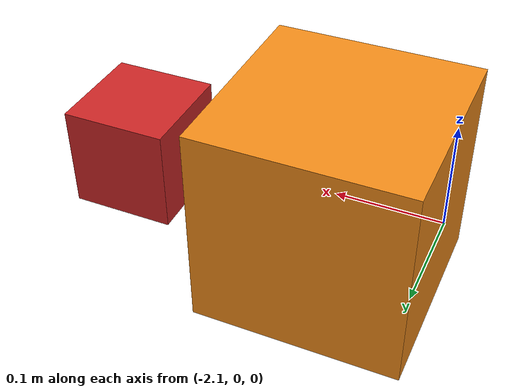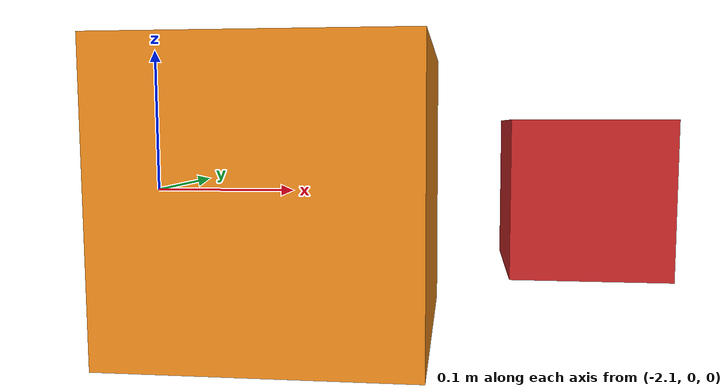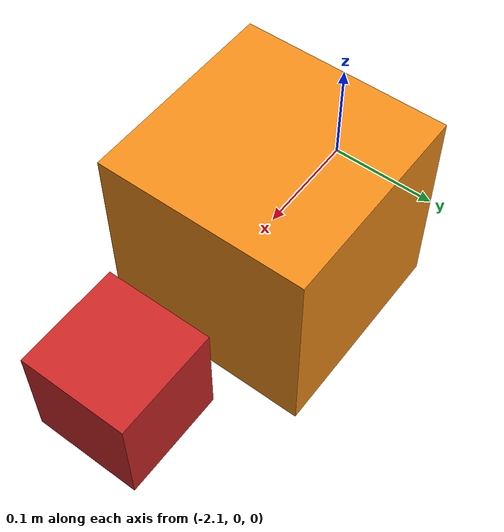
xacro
<?xml version='1.0' encoding='utf-8'?>
<robot xmlns:xacro="http://www.ros.org/wiki/xacro" name="free_flying_camera">

<!-- robot constants -->
<xacro:property name="mass" value="0" /> <!-- arbitrary value for mass -->
<xacro:property name="camera_link" value="0.1" /> <!-- Size of square 'camera' box -->
<xacro:property name="mass" value="0" /> <!-- arbitrary value for mass -->
<xacro:property name="width" value="0.2" /> <!-- Square dimensions (widthxwidth) of beams -->
<xacro:property name="height1" value="0.2" /> <!-- Link 1 -->
<xacro:property name="PI" value="3.1415926535897931"/>
<xacro:property name="x" value="-2"/>
<xacro:property name="y" value="0"/>
<xacro:property name="z" value="0"/>
<xacro:property name="r" value="0"/>
<xacro:property name="p" value="0"/>
<xacro:property name="y" value="0"/>

<!-- Import all Gazebo-customization elements, including Gazebo colors -->
<xacro:include filename="$(find visual_servoing)/robot_description/free_flying_kinect.gazebo" />

<!--link name="world"/-->
<!--link name="base_footprint"/-->

  <!-- Base Link -->
  <link name="link1">
    <collision>
      <origin xyz="${x} ${y} ${z}" rpy="${r} ${p} ${y}"/>
      <geometry>
	<box size="${width} ${width} ${height1}"/>
      </geometry>
    </collision>

    <visual>
      <origin xyz="${x} ${y} ${z}" rpy="${r} ${p} ${y}"/>
      <geometry>
	<box size="${width} ${width} ${height1}"/>
      </geometry>
      <material name="orange"/>
    </visual>

    <inertial>
      <origin xyz="${x} ${y} ${z}" rpy="${r} ${p} ${y}"/>
      <mass value="${mass}"/>
      <inertia
	  ixx="${mass / 12.0 * (width*width + height1*height1)}" ixy="0.0" ixz="0.0"
	  iyy="${mass / 12.0 * (height1*height1 + width*width)}" iyz="0.0"
	  izz="${mass / 12.0 * (width*width + width*width)}"/>
    </inertial>
  </link>

 <joint name="camera_joint" type="fixed">
    <axis xyz="0 1 0" />
    <origin xyz="${x+width} ${y} ${z}" rpy="${r} ${p} ${y}"/>
    <parent link="link1"/>
    <child link="camera_link"/>
  </joint>

 <!-- Camera -->
  <link name="camera_link">
    <collision>
      <origin xyz="0 0 0" rpy="0 0 0"/>
      <geometry>
	<box size="${camera_link} ${camera_link} ${camera_link}"/>
      </geometry>
    </collision>

    <visual>
      <origin xyz="0 0 0" rpy="0 0 0"/>
      <geometry>
	<box size="${camera_link} ${camera_link} ${camera_link}"/>
      </geometry>
      <material name="red"/>
    </visual>

    <inertial>
      <mass value="1e-5" />
      <origin xyz="0 0 0" rpy="0 0 0"/>
      <inertia ixx="1e-6" ixy="0" ixz="0" iyy="1e-6" iyz="0" izz="1e-6" />
    </inertial>
  </link>

  <!-- generate an optical frame http://www.ros.org/reps/rep-0103.html#suffix-frames
      so that ros and opencv can operate on the camera frame correctly -->
  <joint name="camera_optical_joint" type="fixed">
    <!-- these values have to be these values otherwise the gazebo camera image
        won't be aligned properly with the frame it is supposedly originating from -->
    <origin xyz="0.1 0 0" rpy="${pi/2} 0 ${-pi/2}"/>
    <parent link="camera_link"/>
    <child link="camera_link_optical"/>
  </joint>

  <link name="camera_link_optical">
  </link>

</robot>
